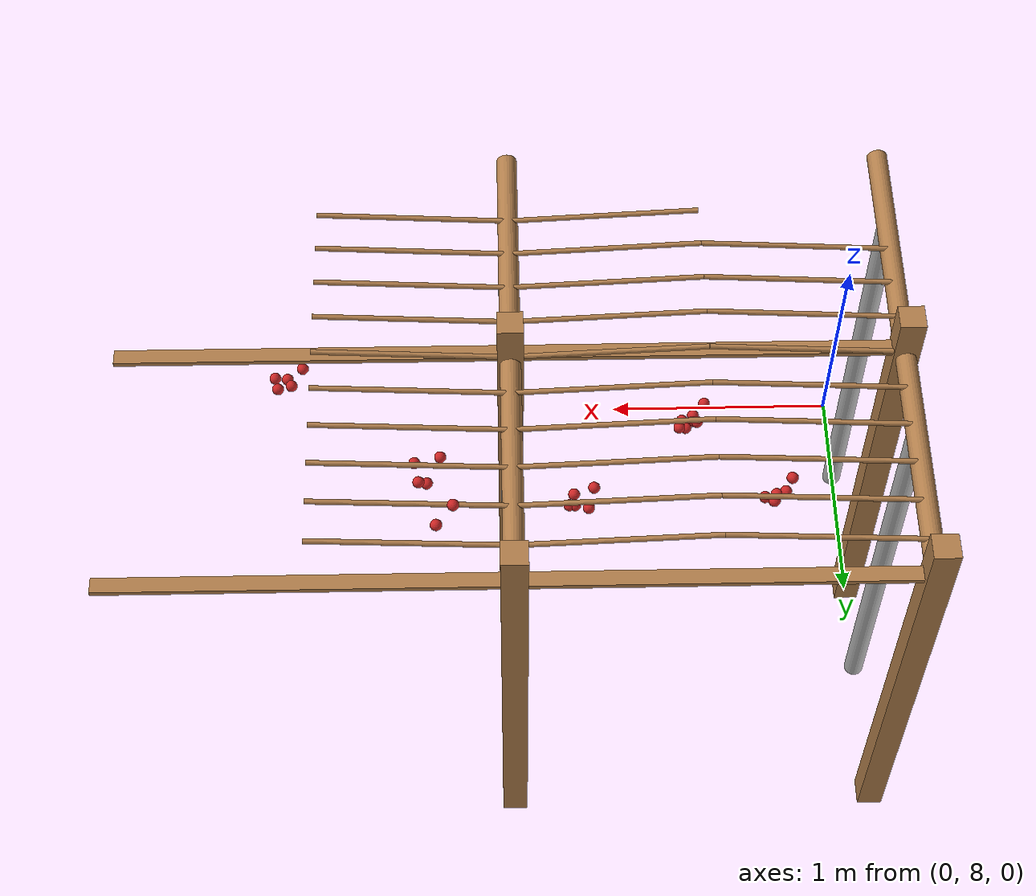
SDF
<sdf version="1.4">
 <model name="pergola">
  <include><name>post_9</name><pose>0.0 9.0 0 0 0 0</pose><uri>model://post</uri></include>
  <include><name>post_10</name><pose>0.0 10.0 0 0 0 0</pose><uri>model://post</uri></include>
  <include><name>post_20</name><pose>1.5 9.0 0 0 0 0</pose><uri>model://post</uri></include>
  <include><name>post_21</name><pose>1.5 10.0 0 0 0 0</pose><uri>model://post</uri></include>
  <link name="beam_9">
   <pose>0.75 9.0 1.81 0 0 0</pose>
   <collision name="collision"><geometry><box><size>1.5 0.06 0.02</size></box></geometry></collision>
   <visual name="visual">
    <geometry><box><size>1.5 0.06 0.02</size></box></geometry>
    <material><script><name>Gazebo/Wood</name></script></material>
   </visual>
   <inertial>
    <mass>5</mass>
    <inertia>
     <ixx>0.0016666666666666668</ixx>
     <ixy>0.0</ixy>
     <ixz>0.0</ixz>
     <iyy>0.9390000000000001</iyy>
     <iyz>0.0</iyz>
     <izz>0.9376666666666665</izz>
    </inertia>
   </inertial>
  </link>
  <link name="beam_10">
   <pose>0.75 10.0 1.81 0 0 0</pose>
   <collision name="collision"><geometry><box><size>1.5 0.06 0.02</size></box></geometry></collision>
   <visual name="visual">
    <geometry><box><size>1.5 0.06 0.02</size></box></geometry>
    <material><script><name>Gazebo/Wood</name></script></material>
   </visual>
   <inertial>
    <mass>5</mass>
    <inertia>
     <ixx>0.0016666666666666668</ixx>
     <ixy>0.0</ixy>
     <ixz>0.0</ixz>
     <iyy>0.9390000000000001</iyy>
     <iyz>0.0</iyz>
     <izz>0.9376666666666665</izz>
    </inertia>
   </inertial>
  </link>
  <link name="beam_20">
   <pose>2.25 9.0 1.81 0 0 0</pose>
   <collision name="collision"><geometry><box><size>1.5 0.06 0.02</size></box></geometry></collision>
   <visual name="visual">
    <geometry><box><size>1.5 0.06 0.02</size></box></geometry>
    <material><script><name>Gazebo/Wood</name></script></material>
   </visual>
   <inertial>
    <mass>5</mass>
    <inertia>
     <ixx>0.0016666666666666668</ixx>
     <ixy>0.0</ixy>
     <ixz>0.0</ixz>
     <iyy>0.9390000000000001</iyy>
     <iyz>0.0</iyz>
     <izz>0.9376666666666665</izz>
    </inertia>
   </inertial>
  </link>
  <link name="beam_21">
   <pose>2.25 10.0 1.81 0 0 0</pose>
   <collision name="collision"><geometry><box><size>1.5 0.06 0.02</size></box></geometry></collision>
   <visual name="visual">
    <geometry><box><size>1.5 0.06 0.02</size></box></geometry>
    <material><script><name>Gazebo/Wood</name></script></material>
   </visual>
   <inertial>
    <mass>5</mass>
    <inertia>
     <ixx>0.0016666666666666668</ixx>
     <ixy>0.0</ixy>
     <ixz>0.0</ixz>
     <iyy>0.9390000000000001</iyy>
     <iyz>0.0</iyz>
     <izz>0.9376666666666665</izz>
    </inertia>
   </inertial>
  </link>
  <include><name>tree_8</name><pose>0.0 8.4 0 0 0 0</pose><uri>model://tree_trunk</uri></include>
  <include><name>tree_9</name><pose>0.0 9.4 0 0 0 0</pose><uri>model://tree_trunk</uri></include>
  <include><name>tree_18</name><pose>1.5 8.4 0 0 0 0</pose><uri>model://tree_trunk</uri></include>
  <include><name>tree_19</name><pose>1.5 9.4 0 0 0 0</pose><uri>model://tree_trunk</uri></include>
  <link name="baseBranch_8">
   <pose>0.0 8.5 1.8 1.5707963267948966 0 0</pose>
   <collision name="collision">
    <geometry><cylinder><radius>0.04</radius><length>0.94</length></cylinder></geometry>
   </collision>
   <visual name="visual">
    <geometry><cylinder><radius>0.04</radius><length>0.94</length></cylinder></geometry>
    <material><script><name>Gazebo/WoodFloor</name></script></material>
   </visual>
   <inertial>
    <mass>10</mass>
    <inertia>
     <ixx>0.7403333333333334</ixx>
     <ixy>0.0</ixy>
     <ixz>0.0</ixz>
     <iyy>0.7403333333333334</iyy>
     <iyz>0.0</iyz>
     <izz>0.008</izz>
    </inertia>
   </inertial>
  </link>
  <link name="baseBranch_9">
   <pose>0.0 9.5 1.8 1.5707963267948966 0 0</pose>
   <collision name="collision">
    <geometry><cylinder><radius>0.04</radius><length>0.94</length></cylinder></geometry>
   </collision>
   <visual name="visual">
    <geometry><cylinder><radius>0.04</radius><length>0.94</length></cylinder></geometry>
    <material><script><name>Gazebo/WoodFloor</name></script></material>
   </visual>
   <inertial>
    <mass>10</mass>
    <inertia>
     <ixx>0.7403333333333334</ixx>
     <ixy>0.0</ixy>
     <ixz>0.0</ixz>
     <iyy>0.7403333333333334</iyy>
     <iyz>0.0</iyz>
     <izz>0.008</izz>
    </inertia>
   </inertial>
  </link>
  <link name="baseBranch_18">
   <pose>1.5 8.5 1.8 1.5707963267948966 0 0</pose>
   <collision name="collision">
    <geometry><cylinder><radius>0.04</radius><length>0.94</length></cylinder></geometry>
   </collision>
   <visual name="visual">
    <geometry><cylinder><radius>0.04</radius><length>0.94</length></cylinder></geometry>
    <material><script><name>Gazebo/WoodFloor</name></script></material>
   </visual>
   <inertial>
    <mass>10</mass>
    <inertia>
     <ixx>0.7403333333333334</ixx>
     <ixy>0.0</ixy>
     <ixz>0.0</ixz>
     <iyy>0.7403333333333334</iyy>
     <iyz>0.0</iyz>
     <izz>0.008</izz>
    </inertia>
   </inertial>
  </link>
  <link name="baseBranch_19">
   <pose>1.5 9.5 1.8 1.5707963267948966 0 0</pose>
   <collision name="collision">
    <geometry><cylinder><radius>0.04</radius><length>0.94</length></cylinder></geometry>
   </collision>
   <visual name="visual">
    <geometry><cylinder><radius>0.04</radius><length>0.94</length></cylinder></geometry>
    <material><script><name>Gazebo/WoodFloor</name></script></material>
   </visual>
   <inertial>
    <mass>10</mass>
    <inertia>
     <ixx>0.7403333333333334</ixx>
     <ixy>0.0</ixy>
     <ixz>0.0</ixz>
     <iyy>0.7403333333333334</iyy>
     <iyz>0.0</iyz>
     <izz>0.008</izz>
    </inertia>
   </inertial>
  </link>
  <link name="vine_101">
   <pose>1.125 8.363333333333332 1.85 0 -1.5042281630190728 0</pose>
   <collision name="collision">
    <geometry><cylinder><radius>0.01</radius><length>0.7516648189186453</length></cylinder></geometry>
   </collision>
   <visual name="visual">
    <geometry><cylinder><radius>0.01</radius><length>0.7516648189186453</length></cylinder></geometry>
    <material><script><name>Gazebo/WoodFloor</name></script></material>
   </visual>
   <inertial>
    <mass>5</mass>
    <inertia>
     <ixx>0.23554166666666657</ixx>
     <ixy>0.0</ixy>
     <ixz>0.0</ixz>
     <iyy>0.23554166666666657</iyy>
     <iyz>0.0</iyz>
     <izz>0.00025</izz>
    </inertia>
   </inertial>
  </link>
  <link name="vine_102">
   <pose>0.375 8.53 1.85 0 1.5042281630190728 0</pose>
   <collision name="collision">
    <geometry><cylinder><radius>0.01</radius><length>0.7516648189186453</length></cylinder></geometry>
   </collision>
   <visual name="visual">
    <geometry><cylinder><radius>0.01</radius><length>0.7516648189186453</length></cylinder></geometry>
    <material><script><name>Gazebo/WoodFloor</name></script></material>
   </visual>
   <inertial>
    <mass>5</mass>
    <inertia>
     <ixx>0.23554166666666657</ixx>
     <ixy>0.0</ixy>
     <ixz>0.0</ixz>
     <iyy>0.23554166666666657</iyy>
     <iyz>0.0</iyz>
     <izz>0.00025</izz>
    </inertia>
   </inertial>
  </link>
  <link name="vine_103">
   <pose>1.125 8.53 1.85 0 -1.5042281630190728 0</pose>
   <collision name="collision">
    <geometry><cylinder><radius>0.01</radius><length>0.7516648189186453</length></cylinder></geometry>
   </collision>
   <visual name="visual">
    <geometry><cylinder><radius>0.01</radius><length>0.7516648189186453</length></cylinder></geometry>
    <material><script><name>Gazebo/WoodFloor</name></script></material>
   </visual>
   <inertial>
    <mass>5</mass>
    <inertia>
     <ixx>0.23554166666666657</ixx>
     <ixy>0.0</ixy>
     <ixz>0.0</ixz>
     <iyy>0.23554166666666657</iyy>
     <iyz>0.0</iyz>
     <izz>0.00025</izz>
    </inertia>
   </inertial>
  </link>
  <link name="vine_104">
   <pose>0.375 8.696666666666665 1.85 0 1.5042281630190728 0</pose>
   <collision name="collision">
    <geometry><cylinder><radius>0.01</radius><length>0.7516648189186453</length></cylinder></geometry>
   </collision>
   <visual name="visual">
    <geometry><cylinder><radius>0.01</radius><length>0.7516648189186453</length></cylinder></geometry>
    <material><script><name>Gazebo/WoodFloor</name></script></material>
   </visual>
   <inertial>
    <mass>5</mass>
    <inertia>
     <ixx>0.23554166666666657</ixx>
     <ixy>0.0</ixy>
     <ixz>0.0</ixz>
     <iyy>0.23554166666666657</iyy>
     <iyz>0.0</iyz>
     <izz>0.00025</izz>
    </inertia>
   </inertial>
  </link>
  <link name="vine_105">
   <pose>1.125 8.696666666666665 1.85 0 -1.5042281630190728 0</pose>
   <collision name="collision">
    <geometry><cylinder><radius>0.01</radius><length>0.7516648189186453</length></cylinder></geometry>
   </collision>
   <visual name="visual">
    <geometry><cylinder><radius>0.01</radius><length>0.7516648189186453</length></cylinder></geometry>
    <material><script><name>Gazebo/WoodFloor</name></script></material>
   </visual>
   <inertial>
    <mass>5</mass>
    <inertia>
     <ixx>0.23554166666666657</ixx>
     <ixy>0.0</ixy>
     <ixz>0.0</ixz>
     <iyy>0.23554166666666657</iyy>
     <iyz>0.0</iyz>
     <izz>0.00025</izz>
    </inertia>
   </inertial>
  </link>
  <link name="vine_106">
   <pose>0.375 8.863333333333332 1.85 0 1.5042281630190728 0</pose>
   <collision name="collision">
    <geometry><cylinder><radius>0.01</radius><length>0.7516648189186453</length></cylinder></geometry>
   </collision>
   <visual name="visual">
    <geometry><cylinder><radius>0.01</radius><length>0.7516648189186453</length></cylinder></geometry>
    <material><script><name>Gazebo/WoodFloor</name></script></material>
   </visual>
   <inertial>
    <mass>5</mass>
    <inertia>
     <ixx>0.23554166666666657</ixx>
     <ixy>0.0</ixy>
     <ixz>0.0</ixz>
     <iyy>0.23554166666666657</iyy>
     <iyz>0.0</iyz>
     <izz>0.00025</izz>
    </inertia>
   </inertial>
  </link>
  <link name="vine_107">
   <pose>1.125 8.863333333333332 1.85 0 -1.5042281630190728 0</pose>
   <collision name="collision">
    <geometry><cylinder><radius>0.01</radius><length>0.7516648189186453</length></cylinder></geometry>
   </collision>
   <visual name="visual">
    <geometry><cylinder><radius>0.01</radius><length>0.7516648189186453</length></cylinder></geometry>
    <material><script><name>Gazebo/WoodFloor</name></script></material>
   </visual>
   <inertial>
    <mass>5</mass>
    <inertia>
     <ixx>0.23554166666666657</ixx>
     <ixy>0.0</ixy>
     <ixz>0.0</ixz>
     <iyy>0.23554166666666657</iyy>
     <iyz>0.0</iyz>
     <izz>0.00025</izz>
    </inertia>
   </inertial>
  </link>
  <link name="vine_108">
   <pose>0.375 9.03 1.85 0 1.5042281630190728 0</pose>
   <collision name="collision">
    <geometry><cylinder><radius>0.01</radius><length>0.7516648189186453</length></cylinder></geometry>
   </collision>
   <visual name="visual">
    <geometry><cylinder><radius>0.01</radius><length>0.7516648189186453</length></cylinder></geometry>
    <material><script><name>Gazebo/WoodFloor</name></script></material>
   </visual>
   <inertial>
    <mass>5</mass>
    <inertia>
     <ixx>0.23554166666666657</ixx>
     <ixy>0.0</ixy>
     <ixz>0.0</ixz>
     <iyy>0.23554166666666657</iyy>
     <iyz>0.0</iyz>
     <izz>0.00025</izz>
    </inertia>
   </inertial>
  </link>
  <link name="vine_109">
   <pose>1.125 9.03 1.85 0 -1.5042281630190728 0</pose>
   <collision name="collision">
    <geometry><cylinder><radius>0.01</radius><length>0.7516648189186453</length></cylinder></geometry>
   </collision>
   <visual name="visual">
    <geometry><cylinder><radius>0.01</radius><length>0.7516648189186453</length></cylinder></geometry>
    <material><script><name>Gazebo/WoodFloor</name></script></material>
   </visual>
   <inertial>
    <mass>5</mass>
    <inertia>
     <ixx>0.23554166666666657</ixx>
     <ixy>0.0</ixy>
     <ixz>0.0</ixz>
     <iyy>0.23554166666666657</iyy>
     <iyz>0.0</iyz>
     <izz>0.00025</izz>
    </inertia>
   </inertial>
  </link>
  <link name="vine_110">
   <pose>0.375 9.196666666666665 1.85 0 1.5042281630190728 0</pose>
   <collision name="collision">
    <geometry><cylinder><radius>0.01</radius><length>0.7516648189186453</length></cylinder></geometry>
   </collision>
   <visual name="visual">
    <geometry><cylinder><radius>0.01</radius><length>0.7516648189186453</length></cylinder></geometry>
    <material><script><name>Gazebo/WoodFloor</name></script></material>
   </visual>
   <inertial>
    <mass>5</mass>
    <inertia>
     <ixx>0.23554166666666657</ixx>
     <ixy>0.0</ixy>
     <ixz>0.0</ixz>
     <iyy>0.23554166666666657</iyy>
     <iyz>0.0</iyz>
     <izz>0.00025</izz>
    </inertia>
   </inertial>
  </link>
  <link name="vine_111">
   <pose>1.125 9.196666666666665 1.85 0 -1.5042281630190728 0</pose>
   <collision name="collision">
    <geometry><cylinder><radius>0.01</radius><length>0.7516648189186453</length></cylinder></geometry>
   </collision>
   <visual name="visual">
    <geometry><cylinder><radius>0.01</radius><length>0.7516648189186453</length></cylinder></geometry>
    <material><script><name>Gazebo/WoodFloor</name></script></material>
   </visual>
   <inertial>
    <mass>5</mass>
    <inertia>
     <ixx>0.23554166666666657</ixx>
     <ixy>0.0</ixy>
     <ixz>0.0</ixz>
     <iyy>0.23554166666666657</iyy>
     <iyz>0.0</iyz>
     <izz>0.00025</izz>
    </inertia>
   </inertial>
  </link>
  <link name="vine_112">
   <pose>0.375 9.363333333333332 1.85 0 1.5042281630190728 0</pose>
   <collision name="collision">
    <geometry><cylinder><radius>0.01</radius><length>0.7516648189186453</length></cylinder></geometry>
   </collision>
   <visual name="visual">
    <geometry><cylinder><radius>0.01</radius><length>0.7516648189186453</length></cylinder></geometry>
    <material><script><name>Gazebo/WoodFloor</name></script></material>
   </visual>
   <inertial>
    <mass>5</mass>
    <inertia>
     <ixx>0.23554166666666657</ixx>
     <ixy>0.0</ixy>
     <ixz>0.0</ixz>
     <iyy>0.23554166666666657</iyy>
     <iyz>0.0</iyz>
     <izz>0.00025</izz>
    </inertia>
   </inertial>
  </link>
  <link name="vine_113">
   <pose>1.125 9.363333333333332 1.85 0 -1.5042281630190728 0</pose>
   <collision name="collision">
    <geometry><cylinder><radius>0.01</radius><length>0.7516648189186453</length></cylinder></geometry>
   </collision>
   <visual name="visual">
    <geometry><cylinder><radius>0.01</radius><length>0.7516648189186453</length></cylinder></geometry>
    <material><script><name>Gazebo/WoodFloor</name></script></material>
   </visual>
   <inertial>
    <mass>5</mass>
    <inertia>
     <ixx>0.23554166666666657</ixx>
     <ixy>0.0</ixy>
     <ixz>0.0</ixz>
     <iyy>0.23554166666666657</iyy>
     <iyz>0.0</iyz>
     <izz>0.00025</izz>
    </inertia>
   </inertial>
  </link>
  <link name="vine_114">
   <pose>0.375 9.53 1.85 0 1.5042281630190728 0</pose>
   <collision name="collision">
    <geometry><cylinder><radius>0.01</radius><length>0.7516648189186453</length></cylinder></geometry>
   </collision>
   <visual name="visual">
    <geometry><cylinder><radius>0.01</radius><length>0.7516648189186453</length></cylinder></geometry>
    <material><script><name>Gazebo/WoodFloor</name></script></material>
   </visual>
   <inertial>
    <mass>5</mass>
    <inertia>
     <ixx>0.23554166666666657</ixx>
     <ixy>0.0</ixy>
     <ixz>0.0</ixz>
     <iyy>0.23554166666666657</iyy>
     <iyz>0.0</iyz>
     <izz>0.00025</izz>
    </inertia>
   </inertial>
  </link>
  <link name="vine_115">
   <pose>1.125 9.53 1.85 0 -1.5042281630190728 0</pose>
   <collision name="collision">
    <geometry><cylinder><radius>0.01</radius><length>0.7516648189186453</length></cylinder></geometry>
   </collision>
   <visual name="visual">
    <geometry><cylinder><radius>0.01</radius><length>0.7516648189186453</length></cylinder></geometry>
    <material><script><name>Gazebo/WoodFloor</name></script></material>
   </visual>
   <inertial>
    <mass>5</mass>
    <inertia>
     <ixx>0.23554166666666657</ixx>
     <ixy>0.0</ixy>
     <ixz>0.0</ixz>
     <iyy>0.23554166666666657</iyy>
     <iyz>0.0</iyz>
     <izz>0.00025</izz>
    </inertia>
   </inertial>
  </link>
  <link name="vine_116">
   <pose>0.375 9.696666666666665 1.85 0 1.5042281630190728 0</pose>
   <collision name="collision">
    <geometry><cylinder><radius>0.01</radius><length>0.7516648189186453</length></cylinder></geometry>
   </collision>
   <visual name="visual">
    <geometry><cylinder><radius>0.01</radius><length>0.7516648189186453</length></cylinder></geometry>
    <material><script><name>Gazebo/WoodFloor</name></script></material>
   </visual>
   <inertial>
    <mass>5</mass>
    <inertia>
     <ixx>0.23554166666666657</ixx>
     <ixy>0.0</ixy>
     <ixz>0.0</ixz>
     <iyy>0.23554166666666657</iyy>
     <iyz>0.0</iyz>
     <izz>0.00025</izz>
    </inertia>
   </inertial>
  </link>
  <link name="vine_117">
   <pose>1.125 9.696666666666665 1.85 0 -1.5042281630190728 0</pose>
   <collision name="collision">
    <geometry><cylinder><radius>0.01</radius><length>0.7516648189186453</length></cylinder></geometry>
   </collision>
   <visual name="visual">
    <geometry><cylinder><radius>0.01</radius><length>0.7516648189186453</length></cylinder></geometry>
    <material><script><name>Gazebo/WoodFloor</name></script></material>
   </visual>
   <inertial>
    <mass>5</mass>
    <inertia>
     <ixx>0.23554166666666657</ixx>
     <ixy>0.0</ixy>
     <ixz>0.0</ixz>
     <iyy>0.23554166666666657</iyy>
     <iyz>0.0</iyz>
     <izz>0.00025</izz>
    </inertia>
   </inertial>
  </link>
  <link name="vine_118">
   <pose>0.375 9.863333333333332 1.85 0 1.5042281630190728 0</pose>
   <collision name="collision">
    <geometry><cylinder><radius>0.01</radius><length>0.7516648189186453</length></cylinder></geometry>
   </collision>
   <visual name="visual">
    <geometry><cylinder><radius>0.01</radius><length>0.7516648189186453</length></cylinder></geometry>
    <material><script><name>Gazebo/WoodFloor</name></script></material>
   </visual>
   <inertial>
    <mass>5</mass>
    <inertia>
     <ixx>0.23554166666666657</ixx>
     <ixy>0.0</ixy>
     <ixz>0.0</ixz>
     <iyy>0.23554166666666657</iyy>
     <iyz>0.0</iyz>
     <izz>0.00025</izz>
    </inertia>
   </inertial>
  </link>
  <link name="vine_119">
   <pose>1.125 9.863333333333332 1.85 0 -1.5042281630190728 0</pose>
   <collision name="collision">
    <geometry><cylinder><radius>0.01</radius><length>0.7516648189186453</length></cylinder></geometry>
   </collision>
   <visual name="visual">
    <geometry><cylinder><radius>0.01</radius><length>0.7516648189186453</length></cylinder></geometry>
    <material><script><name>Gazebo/WoodFloor</name></script></material>
   </visual>
   <inertial>
    <mass>5</mass>
    <inertia>
     <ixx>0.23554166666666657</ixx>
     <ixy>0.0</ixy>
     <ixz>0.0</ixz>
     <iyy>0.23554166666666657</iyy>
     <iyz>0.0</iyz>
     <izz>0.00025</izz>
    </inertia>
   </inertial>
  </link>
  <link name="vine_220">
   <pose>1.875 8.363333333333332 1.85 0 1.5042281630190728 0</pose>
   <collision name="collision">
    <geometry><cylinder><radius>0.01</radius><length>0.7516648189186453</length></cylinder></geometry>
   </collision>
   <visual name="visual">
    <geometry><cylinder><radius>0.01</radius><length>0.7516648189186453</length></cylinder></geometry>
    <material><script><name>Gazebo/WoodFloor</name></script></material>
   </visual>
   <inertial>
    <mass>5</mass>
    <inertia>
     <ixx>0.23554166666666657</ixx>
     <ixy>0.0</ixy>
     <ixz>0.0</ixz>
     <iyy>0.23554166666666657</iyy>
     <iyz>0.0</iyz>
     <izz>0.00025</izz>
    </inertia>
   </inertial>
  </link>
  <link name="vine_222">
   <pose>1.875 8.53 1.85 0 1.5042281630190728 0</pose>
   <collision name="collision">
    <geometry><cylinder><radius>0.01</radius><length>0.7516648189186453</length></cylinder></geometry>
   </collision>
   <visual name="visual">
    <geometry><cylinder><radius>0.01</radius><length>0.7516648189186453</length></cylinder></geometry>
    <material><script><name>Gazebo/WoodFloor</name></script></material>
   </visual>
   <inertial>
    <mass>5</mass>
    <inertia>
     <ixx>0.23554166666666657</ixx>
     <ixy>0.0</ixy>
     <ixz>0.0</ixz>
     <iyy>0.23554166666666657</iyy>
     <iyz>0.0</iyz>
     <izz>0.00025</izz>
    </inertia>
   </inertial>
  </link>
  <link name="vine_224">
   <pose>1.875 8.696666666666665 1.85 0 1.5042281630190728 0</pose>
   <collision name="collision">
    <geometry><cylinder><radius>0.01</radius><length>0.7516648189186453</length></cylinder></geometry>
   </collision>
   <visual name="visual">
    <geometry><cylinder><radius>0.01</radius><length>0.7516648189186453</length></cylinder></geometry>
    <material><script><name>Gazebo/WoodFloor</name></script></material>
   </visual>
   <inertial>
    <mass>5</mass>
    <inertia>
     <ixx>0.23554166666666657</ixx>
     <ixy>0.0</ixy>
     <ixz>0.0</ixz>
     <iyy>0.23554166666666657</iyy>
     <iyz>0.0</iyz>
     <izz>0.00025</izz>
    </inertia>
   </inertial>
  </link>
  <link name="vine_226">
   <pose>1.875 8.863333333333332 1.85 0 1.5042281630190728 0</pose>
   <collision name="collision">
    <geometry><cylinder><radius>0.01</radius><length>0.7516648189186453</length></cylinder></geometry>
   </collision>
   <visual name="visual">
    <geometry><cylinder><radius>0.01</radius><length>0.7516648189186453</length></cylinder></geometry>
    <material><script><name>Gazebo/WoodFloor</name></script></material>
   </visual>
   <inertial>
    <mass>5</mass>
    <inertia>
     <ixx>0.23554166666666657</ixx>
     <ixy>0.0</ixy>
     <ixz>0.0</ixz>
     <iyy>0.23554166666666657</iyy>
     <iyz>0.0</iyz>
     <izz>0.00025</izz>
    </inertia>
   </inertial>
  </link>
  <link name="vine_228">
   <pose>1.875 9.03 1.85 0 1.5042281630190728 0</pose>
   <collision name="collision">
    <geometry><cylinder><radius>0.01</radius><length>0.7516648189186453</length></cylinder></geometry>
   </collision>
   <visual name="visual">
    <geometry><cylinder><radius>0.01</radius><length>0.7516648189186453</length></cylinder></geometry>
    <material><script><name>Gazebo/WoodFloor</name></script></material>
   </visual>
   <inertial>
    <mass>5</mass>
    <inertia>
     <ixx>0.23554166666666657</ixx>
     <ixy>0.0</ixy>
     <ixz>0.0</ixz>
     <iyy>0.23554166666666657</iyy>
     <iyz>0.0</iyz>
     <izz>0.00025</izz>
    </inertia>
   </inertial>
  </link>
  <link name="vine_230">
   <pose>1.875 9.196666666666665 1.85 0 1.5042281630190728 0</pose>
   <collision name="collision">
    <geometry><cylinder><radius>0.01</radius><length>0.7516648189186453</length></cylinder></geometry>
   </collision>
   <visual name="visual">
    <geometry><cylinder><radius>0.01</radius><length>0.7516648189186453</length></cylinder></geometry>
    <material><script><name>Gazebo/WoodFloor</name></script></material>
   </visual>
   <inertial>
    <mass>5</mass>
    <inertia>
     <ixx>0.23554166666666657</ixx>
     <ixy>0.0</ixy>
     <ixz>0.0</ixz>
     <iyy>0.23554166666666657</iyy>
     <iyz>0.0</iyz>
     <izz>0.00025</izz>
    </inertia>
   </inertial>
  </link>
  <link name="vine_232">
   <pose>1.875 9.363333333333332 1.85 0 1.5042281630190728 0</pose>
   <collision name="collision">
    <geometry><cylinder><radius>0.01</radius><length>0.7516648189186453</length></cylinder></geometry>
   </collision>
   <visual name="visual">
    <geometry><cylinder><radius>0.01</radius><length>0.7516648189186453</length></cylinder></geometry>
    <material><script><name>Gazebo/WoodFloor</name></script></material>
   </visual>
   <inertial>
    <mass>5</mass>
    <inertia>
     <ixx>0.23554166666666657</ixx>
     <ixy>0.0</ixy>
     <ixz>0.0</ixz>
     <iyy>0.23554166666666657</iyy>
     <iyz>0.0</iyz>
     <izz>0.00025</izz>
    </inertia>
   </inertial>
  </link>
  <link name="vine_234">
   <pose>1.875 9.53 1.85 0 1.5042281630190728 0</pose>
   <collision name="collision">
    <geometry><cylinder><radius>0.01</radius><length>0.7516648189186453</length></cylinder></geometry>
   </collision>
   <visual name="visual">
    <geometry><cylinder><radius>0.01</radius><length>0.7516648189186453</length></cylinder></geometry>
    <material><script><name>Gazebo/WoodFloor</name></script></material>
   </visual>
   <inertial>
    <mass>5</mass>
    <inertia>
     <ixx>0.23554166666666657</ixx>
     <ixy>0.0</ixy>
     <ixz>0.0</ixz>
     <iyy>0.23554166666666657</iyy>
     <iyz>0.0</iyz>
     <izz>0.00025</izz>
    </inertia>
   </inertial>
  </link>
  <link name="vine_236">
   <pose>1.875 9.696666666666665 1.85 0 1.5042281630190728 0</pose>
   <collision name="collision">
    <geometry><cylinder><radius>0.01</radius><length>0.7516648189186453</length></cylinder></geometry>
   </collision>
   <visual name="visual">
    <geometry><cylinder><radius>0.01</radius><length>0.7516648189186453</length></cylinder></geometry>
    <material><script><name>Gazebo/WoodFloor</name></script></material>
   </visual>
   <inertial>
    <mass>5</mass>
    <inertia>
     <ixx>0.23554166666666657</ixx>
     <ixy>0.0</ixy>
     <ixz>0.0</ixz>
     <iyy>0.23554166666666657</iyy>
     <iyz>0.0</iyz>
     <izz>0.00025</izz>
    </inertia>
   </inertial>
  </link>
  <link name="vine_238">
   <pose>1.875 9.863333333333332 1.85 0 1.5042281630190728 0</pose>
   <collision name="collision">
    <geometry><cylinder><radius>0.01</radius><length>0.7516648189186453</length></cylinder></geometry>
   </collision>
   <visual name="visual">
    <geometry><cylinder><radius>0.01</radius><length>0.7516648189186453</length></cylinder></geometry>
    <material><script><name>Gazebo/WoodFloor</name></script></material>
   </visual>
   <inertial>
    <mass>5</mass>
    <inertia>
     <ixx>0.23554166666666657</ixx>
     <ixy>0.0</ixy>
     <ixz>0.0</ixz>
     <iyy>0.23554166666666657</iyy>
     <iyz>0.0</iyz>
     <izz>0.00025</izz>
    </inertia>
   </inertial>
  </link>
  <link name="fruit_30">
   <pose>0.755792844194699 9.103450807325663 1.6052357998319977 0 0 0</pose>
   <collision name="fruit_collision_30"><geometry><sphere><radius>0.022</radius></sphere></geometry></collision>
   <visual name="visual">
    <geometry><sphere><radius>0.022</radius></sphere></geometry>
    <material><script><name>Gazebo/Red</name></script></material>
   </visual>
   <inertial>
    <mass>0.05</mass>
    <inertia>
     <ixx>9.679999999999999e-06</ixx>
     <ixy>0.0</ixy>
     <ixz>0.0</ixz>
     <iyy>9.679999999999999e-06</iyy>
     <iyz>0.0</iyz>
     <izz>9.679999999999999e-06</izz>
    </inertia>
   </inertial>
   <sensor name="fruit_contact_30" type="contact">
    <contact><collision>fruit_collision_30</collision></contact>
   </sensor>
  </link>
  <link name="fruit_67">
   <pose>1.7673895222020446 9.404518107727268 1.7100876398979161 0 0 0</pose>
   <collision name="fruit_collision_67"><geometry><sphere><radius>0.022</radius></sphere></geometry></collision>
   <visual name="visual">
    <geometry><sphere><radius>0.022</radius></sphere></geometry>
    <material><script><name>Gazebo/Red</name></script></material>
   </visual>
   <inertial>
    <mass>0.05</mass>
    <inertia>
     <ixx>9.679999999999999e-06</ixx>
     <ixy>0.0</ixy>
     <ixz>0.0</ixz>
     <iyy>9.679999999999999e-06</iyy>
     <iyz>0.0</iyz>
     <izz>9.679999999999999e-06</izz>
    </inertia>
   </inertial>
   <sensor name="fruit_contact_67" type="contact">
    <contact><collision>fruit_collision_67</collision></contact>
   </sensor>
  </link>
  <link name="fruit_68">
   <pose>0.46208725345724905 9.52044053483191 1.7125968568966448 0 0 0</pose>
   <collision name="fruit_collision_68"><geometry><sphere><radius>0.022</radius></sphere></geometry></collision>
   <visual name="visual">
    <geometry><sphere><radius>0.022</radius></sphere></geometry>
    <material><script><name>Gazebo/Red</name></script></material>
   </visual>
   <inertial>
    <mass>0.05</mass>
    <inertia>
     <ixx>9.679999999999999e-06</ixx>
     <ixy>0.0</ixy>
     <ixz>0.0</ixz>
     <iyy>9.679999999999999e-06</iyy>
     <iyz>0.0</iyz>
     <izz>9.679999999999999e-06</izz>
    </inertia>
   </inertial>
   <sensor name="fruit_contact_68" type="contact">
    <contact><collision>fruit_collision_68</collision></contact>
   </sensor>
  </link>
  <link name="fruit_82">
   <pose>2.2939515389181184 8.99138709063981 1.7146847765496893 0 0 0</pose>
   <collision name="fruit_collision_82"><geometry><sphere><radius>0.022</radius></sphere></geometry></collision>
   <visual name="visual">
    <geometry><sphere><radius>0.022</radius></sphere></geometry>
    <material><script><name>Gazebo/Red</name></script></material>
   </visual>
   <inertial>
    <mass>0.05</mass>
    <inertia>
     <ixx>9.679999999999999e-06</ixx>
     <ixy>0.0</ixy>
     <ixz>0.0</ixz>
     <iyy>9.679999999999999e-06</iyy>
     <iyz>0.0</iyz>
     <izz>9.679999999999999e-06</izz>
    </inertia>
   </inertial>
   <sensor name="fruit_contact_82" type="contact">
    <contact><collision>fruit_collision_82</collision></contact>
   </sensor>
  </link>
  <link name="fruit_101">
   <pose>1.7160704738596013 9.706945979006743 1.852573262974747 0 0 0</pose>
   <collision name="fruit_collision_101"><geometry><sphere><radius>0.022</radius></sphere></geometry></collision>
   <visual name="visual">
    <geometry><sphere><radius>0.022</radius></sphere></geometry>
    <material><script><name>Gazebo/Red</name></script></material>
   </visual>
   <inertial>
    <mass>0.05</mass>
    <inertia>
     <ixx>9.679999999999999e-06</ixx>
     <ixy>0.0</ixy>
     <ixz>0.0</ixz>
     <iyy>9.679999999999999e-06</iyy>
     <iyz>0.0</iyz>
     <izz>9.679999999999999e-06</izz>
    </inertia>
   </inertial>
   <sensor name="fruit_contact_101" type="contact">
    <contact><collision>fruit_collision_101</collision></contact>
   </sensor>
  </link>
  <link name="fruit_109">
   <pose>1.193306153062151 9.487244435356917 1.6144778282475178 0 0 0</pose>
   <collision name="fruit_collision_109"><geometry><sphere><radius>0.022</radius></sphere></geometry></collision>
   <visual name="visual">
    <geometry><sphere><radius>0.022</radius></sphere></geometry>
    <material><script><name>Gazebo/Red</name></script></material>
   </visual>
   <inertial>
    <mass>0.05</mass>
    <inertia>
     <ixx>9.679999999999999e-06</ixx>
     <ixy>0.0</ixy>
     <ixz>0.0</ixz>
     <iyy>9.679999999999999e-06</iyy>
     <iyz>0.0</iyz>
     <izz>9.679999999999999e-06</izz>
    </inertia>
   </inertial>
   <sensor name="fruit_contact_109" type="contact">
    <contact><collision>fruit_collision_109</collision></contact>
   </sensor>
  </link>
  <link name="fruit_139">
   <pose>2.335189258603022 9.06412139900345 1.7045835281592354 0 0 0</pose>
   <collision name="fruit_collision_139"><geometry><sphere><radius>0.022</radius></sphere></geometry></collision>
   <visual name="visual">
    <geometry><sphere><radius>0.022</radius></sphere></geometry>
    <material><script><name>Gazebo/Red</name></script></material>
   </visual>
   <inertial>
    <mass>0.05</mass>
    <inertia>
     <ixx>9.679999999999999e-06</ixx>
     <ixy>0.0</ixy>
     <ixz>0.0</ixz>
     <iyy>9.679999999999999e-06</iyy>
     <iyz>0.0</iyz>
     <izz>9.679999999999999e-06</izz>
    </inertia>
   </inertial>
   <sensor name="fruit_contact_139" type="contact">
    <contact><collision>fruit_collision_139</collision></contact>
   </sensor>
  </link>
  <link name="fruit_141">
   <pose>1.7777025805166318 9.77681436903368 1.8308529963634648 0 0 0</pose>
   <collision name="fruit_collision_141"><geometry><sphere><radius>0.022</radius></sphere></geometry></collision>
   <visual name="visual">
    <geometry><sphere><radius>0.022</radius></sphere></geometry>
    <material><script><name>Gazebo/Red</name></script></material>
   </visual>
   <inertial>
    <mass>0.05</mass>
    <inertia>
     <ixx>9.679999999999999e-06</ixx>
     <ixy>0.0</ixy>
     <ixz>0.0</ixz>
     <iyy>9.679999999999999e-06</iyy>
     <iyz>0.0</iyz>
     <izz>9.679999999999999e-06</izz>
    </inertia>
   </inertial>
   <sensor name="fruit_contact_141" type="contact">
    <contact><collision>fruit_collision_141</collision></contact>
   </sensor>
  </link>
  <link name="fruit_150">
   <pose>2.3504501101103683 9.032926989591488 1.7031079241352316 0 0 0</pose>
   <collision name="fruit_collision_150"><geometry><sphere><radius>0.022</radius></sphere></geometry></collision>
   <visual name="visual">
    <geometry><sphere><radius>0.022</radius></sphere></geometry>
    <material><script><name>Gazebo/Red</name></script></material>
   </visual>
   <inertial>
    <mass>0.05</mass>
    <inertia>
     <ixx>9.679999999999999e-06</ixx>
     <ixy>0.0</ixy>
     <ixz>0.0</ixz>
     <iyy>9.679999999999999e-06</iyy>
     <iyz>0.0</iyz>
     <izz>9.679999999999999e-06</izz>
    </inertia>
   </inertial>
   <sensor name="fruit_contact_150" type="contact">
    <contact><collision>fruit_collision_150</collision></contact>
   </sensor>
  </link>
  <link name="fruit_154">
   <pose>1.2659175012117307 9.556183520186158 1.6022126823529068 0 0 0</pose>
   <collision name="fruit_collision_154"><geometry><sphere><radius>0.022</radius></sphere></geometry></collision>
   <visual name="visual">
    <geometry><sphere><radius>0.022</radius></sphere></geometry>
    <material><script><name>Gazebo/Red</name></script></material>
   </visual>
   <inertial>
    <mass>0.05</mass>
    <inertia>
     <ixx>9.679999999999999e-06</ixx>
     <ixy>0.0</ixy>
     <ixz>0.0</ixz>
     <iyy>9.679999999999999e-06</iyy>
     <iyz>0.0</iyz>
     <izz>9.679999999999999e-06</izz>
    </inertia>
   </inertial>
   <sensor name="fruit_contact_154" type="contact">
    <contact><collision>fruit_collision_154</collision></contact>
   </sensor>
  </link>
  <link name="fruit_195">
   <pose>2.3863427577513225 9.075729509521485 1.7012140809959444 0 0 0</pose>
   <collision name="fruit_collision_195"><geometry><sphere><radius>0.022</radius></sphere></geometry></collision>
   <visual name="visual">
    <geometry><sphere><radius>0.022</radius></sphere></geometry>
    <material><script><name>Gazebo/Red</name></script></material>
   </visual>
   <inertial>
    <mass>0.05</mass>
    <inertia>
     <ixx>9.679999999999999e-06</ixx>
     <ixy>0.0</ixy>
     <ixz>0.0</ixz>
     <iyy>9.679999999999999e-06</iyy>
     <iyz>0.0</iyz>
     <izz>9.679999999999999e-06</izz>
    </inertia>
   </inertial>
   <sensor name="fruit_contact_195" type="contact">
    <contact><collision>fruit_collision_195</collision></contact>
   </sensor>
  </link>
  <link name="fruit_201">
   <pose>1.8478966769757532 9.513780347752503 1.710011340169421 0 0 0</pose>
   <collision name="fruit_collision_201"><geometry><sphere><radius>0.022</radius></sphere></geometry></collision>
   <visual name="visual">
    <geometry><sphere><radius>0.022</radius></sphere></geometry>
    <material><script><name>Gazebo/Red</name></script></material>
   </visual>
   <inertial>
    <mass>0.05</mass>
    <inertia>
     <ixx>9.679999999999999e-06</ixx>
     <ixy>0.0</ixy>
     <ixz>0.0</ixz>
     <iyy>9.679999999999999e-06</iyy>
     <iyz>0.0</iyz>
     <izz>9.679999999999999e-06</izz>
    </inertia>
   </inertial>
   <sensor name="fruit_contact_201" type="contact">
    <contact><collision>fruit_collision_201</collision></contact>
   </sensor>
  </link>
  <link name="fruit_204">
   <pose>0.5255080137021738 9.583880482729924 1.7009906424272478 0 0 0</pose>
   <collision name="fruit_collision_204"><geometry><sphere><radius>0.022</radius></sphere></geometry></collision>
   <visual name="visual">
    <geometry><sphere><radius>0.022</radius></sphere></geometry>
    <material><script><name>Gazebo/Red</name></script></material>
   </visual>
   <inertial>
    <mass>0.05</mass>
    <inertia>
     <ixx>9.679999999999999e-06</ixx>
     <ixy>0.0</ixy>
     <ixz>0.0</ixz>
     <iyy>9.679999999999999e-06</iyy>
     <iyz>0.0</iyz>
     <izz>9.679999999999999e-06</izz>
    </inertia>
   </inertial>
   <sensor name="fruit_contact_204" type="contact">
    <contact><collision>fruit_collision_204</collision></contact>
   </sensor>
  </link>
  <link name="fruit_225">
   <pose>0.5359522510437907 9.616163372928478 1.7056204122228524 0 0 0</pose>
   <collision name="fruit_collision_225"><geometry><sphere><radius>0.022</radius></sphere></geometry></collision>
   <visual name="visual">
    <geometry><sphere><radius>0.022</radius></sphere></geometry>
    <material><script><name>Gazebo/Red</name></script></material>
   </visual>
   <inertial>
    <mass>0.05</mass>
    <inertia>
     <ixx>9.679999999999999e-06</ixx>
     <ixy>0.0</ixy>
     <ixz>0.0</ixz>
     <iyy>9.679999999999999e-06</iyy>
     <iyz>0.0</iyz>
     <izz>9.679999999999999e-06</izz>
    </inertia>
   </inertial>
   <sensor name="fruit_contact_225" type="contact">
    <contact><collision>fruit_collision_225</collision></contact>
   </sensor>
  </link>
  <link name="fruit_289">
   <pose>1.2689311902803708 9.512024348920738 1.6091313946645698 0 0 0</pose>
   <collision name="fruit_collision_289"><geometry><sphere><radius>0.022</radius></sphere></geometry></collision>
   <visual name="visual">
    <geometry><sphere><radius>0.022</radius></sphere></geometry>
    <material><script><name>Gazebo/Red</name></script></material>
   </visual>
   <inertial>
    <mass>0.05</mass>
    <inertia>
     <ixx>9.679999999999999e-06</ixx>
     <ixy>0.0</ixy>
     <ixz>0.0</ixz>
     <iyy>9.679999999999999e-06</iyy>
     <iyz>0.0</iyz>
     <izz>9.679999999999999e-06</izz>
    </inertia>
   </inertial>
   <sensor name="fruit_contact_289" type="contact">
    <contact><collision>fruit_collision_289</collision></contact>
   </sensor>
  </link>
  <link name="fruit_295">
   <pose>0.8001592547836971 9.145696433729341 1.5867757397555278 0 0 0</pose>
   <collision name="fruit_collision_295"><geometry><sphere><radius>0.022</radius></sphere></geometry></collision>
   <visual name="visual">
    <geometry><sphere><radius>0.022</radius></sphere></geometry>
    <material><script><name>Gazebo/Red</name></script></material>
   </visual>
   <inertial>
    <mass>0.05</mass>
    <inertia>
     <ixx>9.679999999999999e-06</ixx>
     <ixy>0.0</ixy>
     <ixz>0.0</ixz>
     <iyy>9.679999999999999e-06</iyy>
     <iyz>0.0</iyz>
     <izz>9.679999999999999e-06</izz>
    </inertia>
   </inertial>
   <sensor name="fruit_contact_295" type="contact">
    <contact><collision>fruit_collision_295</collision></contact>
   </sensor>
  </link>
  <link name="fruit_304">
   <pose>0.4904722513182478 9.574527356383818 1.705845980402625 0 0 0</pose>
   <collision name="fruit_collision_304"><geometry><sphere><radius>0.022</radius></sphere></geometry></collision>
   <visual name="visual">
    <geometry><sphere><radius>0.022</radius></sphere></geometry>
    <material><script><name>Gazebo/Red</name></script></material>
   </visual>
   <inertial>
    <mass>0.05</mass>
    <inertia>
     <ixx>9.679999999999999e-06</ixx>
     <ixy>0.0</ixy>
     <ixz>0.0</ixz>
     <iyy>9.679999999999999e-06</iyy>
     <iyz>0.0</iyz>
     <izz>9.679999999999999e-06</izz>
    </inertia>
   </inertial>
   <sensor name="fruit_contact_304" type="contact">
    <contact><collision>fruit_collision_304</collision></contact>
   </sensor>
  </link>
  <link name="fruit_322">
   <pose>0.8432375306973765 9.167330236274255 1.5853986436001626 0 0 0</pose>
   <collision name="fruit_collision_322"><geometry><sphere><radius>0.022</radius></sphere></geometry></collision>
   <visual name="visual">
    <geometry><sphere><radius>0.022</radius></sphere></geometry>
    <material><script><name>Gazebo/Red</name></script></material>
   </visual>
   <inertial>
    <mass>0.05</mass>
    <inertia>
     <ixx>9.679999999999999e-06</ixx>
     <ixy>0.0</ixy>
     <ixz>0.0</ixz>
     <iyy>9.679999999999999e-06</iyy>
     <iyz>0.0</iyz>
     <izz>9.679999999999999e-06</izz>
    </inertia>
   </inertial>
   <sensor name="fruit_contact_322" type="contact">
    <contact><collision>fruit_collision_322</collision></contact>
   </sensor>
  </link>
  <link name="fruit_331">
   <pose>2.398479577302727 9.024744399328554 1.7000044024315146 0 0 0</pose>
   <collision name="fruit_collision_331"><geometry><sphere><radius>0.022</radius></sphere></geometry></collision>
   <visual name="visual">
    <geometry><sphere><radius>0.022</radius></sphere></geometry>
    <material><script><name>Gazebo/Red</name></script></material>
   </visual>
   <inertial>
    <mass>0.05</mass>
    <inertia>
     <ixx>9.679999999999999e-06</ixx>
     <ixy>0.0</ixy>
     <ixz>0.0</ixz>
     <iyy>9.679999999999999e-06</iyy>
     <iyz>0.0</iyz>
     <izz>9.679999999999999e-06</izz>
    </inertia>
   </inertial>
   <sensor name="fruit_contact_331" type="contact">
    <contact><collision>fruit_collision_331</collision></contact>
   </sensor>
  </link>
  <link name="fruit_342">
   <pose>1.8635228562730093 9.428763175902413 1.7098684627939 0 0 0</pose>
   <collision name="fruit_collision_342"><geometry><sphere><radius>0.022</radius></sphere></geometry></collision>
   <visual name="visual">
    <geometry><sphere><radius>0.022</radius></sphere></geometry>
    <material><script><name>Gazebo/Red</name></script></material>
   </visual>
   <inertial>
    <mass>0.05</mass>
    <inertia>
     <ixx>9.679999999999999e-06</ixx>
     <ixy>0.0</ixy>
     <ixz>0.0</ixz>
     <iyy>9.679999999999999e-06</iyy>
     <iyz>0.0</iyz>
     <izz>9.679999999999999e-06</izz>
    </inertia>
   </inertial>
   <sensor name="fruit_contact_342" type="contact">
    <contact><collision>fruit_collision_342</collision></contact>
   </sensor>
  </link>
  <link name="fruit_357">
   <pose>1.8168651428747133 9.510111025389559 1.6949528587288343 0 0 0</pose>
   <collision name="fruit_collision_357"><geometry><sphere><radius>0.022</radius></sphere></geometry></collision>
   <visual name="visual">
    <geometry><sphere><radius>0.022</radius></sphere></geometry>
    <material><script><name>Gazebo/Red</name></script></material>
   </visual>
   <inertial>
    <mass>0.05</mass>
    <inertia>
     <ixx>9.679999999999999e-06</ixx>
     <ixy>0.0</ixy>
     <ixz>0.0</ixz>
     <iyy>9.679999999999999e-06</iyy>
     <iyz>0.0</iyz>
     <izz>9.679999999999999e-06</izz>
    </inertia>
   </inertial>
   <sensor name="fruit_contact_357" type="contact">
    <contact><collision>fruit_collision_357</collision></contact>
   </sensor>
  </link>
  <link name="fruit_382">
   <pose>0.567317178710673 9.58940946920974 1.6908717728081208 0 0 0</pose>
   <collision name="fruit_collision_382"><geometry><sphere><radius>0.022</radius></sphere></geometry></collision>
   <visual name="visual">
    <geometry><sphere><radius>0.022</radius></sphere></geometry>
    <material><script><name>Gazebo/Red</name></script></material>
   </visual>
   <inertial>
    <mass>0.05</mass>
    <inertia>
     <ixx>9.679999999999999e-06</ixx>
     <ixy>0.0</ixy>
     <ixz>0.0</ixz>
     <iyy>9.679999999999999e-06</iyy>
     <iyz>0.0</iyz>
     <izz>9.679999999999999e-06</izz>
    </inertia>
   </inertial>
   <sensor name="fruit_contact_382" type="contact">
    <contact><collision>fruit_collision_382</collision></contact>
   </sensor>
  </link>
  <link name="fruit_396">
   <pose>0.8568882726006521 9.211091793248464 1.601117099730475 0 0 0</pose>
   <collision name="fruit_collision_396"><geometry><sphere><radius>0.022</radius></sphere></geometry></collision>
   <visual name="visual">
    <geometry><sphere><radius>0.022</radius></sphere></geometry>
    <material><script><name>Gazebo/Red</name></script></material>
   </visual>
   <inertial>
    <mass>0.05</mass>
    <inertia>
     <ixx>9.679999999999999e-06</ixx>
     <ixy>0.0</ixy>
     <ixz>0.0</ixz>
     <iyy>9.679999999999999e-06</iyy>
     <iyz>0.0</iyz>
     <izz>9.679999999999999e-06</izz>
    </inertia>
   </inertial>
   <sensor name="fruit_contact_396" type="contact">
    <contact><collision>fruit_collision_396</collision></contact>
   </sensor>
  </link>
  <link name="fruit_441">
   <pose>1.2881446317477354 9.555059284723729 1.6010770422319955 0 0 0</pose>
   <collision name="fruit_collision_441"><geometry><sphere><radius>0.022</radius></sphere></geometry></collision>
   <visual name="visual">
    <geometry><sphere><radius>0.022</radius></sphere></geometry>
    <material><script><name>Gazebo/Red</name></script></material>
   </visual>
   <inertial>
    <mass>0.05</mass>
    <inertia>
     <ixx>9.679999999999999e-06</ixx>
     <ixy>0.0</ixy>
     <ixz>0.0</ixz>
     <iyy>9.679999999999999e-06</iyy>
     <iyz>0.0</iyz>
     <izz>9.679999999999999e-06</izz>
    </inertia>
   </inertial>
   <sensor name="fruit_contact_441" type="contact">
    <contact><collision>fruit_collision_441</collision></contact>
   </sensor>
  </link>
  <link name="fruit_455">
   <pose>0.8018615746548438 9.171544770192305 1.5840308162957648 0 0 0</pose>
   <collision name="fruit_collision_455"><geometry><sphere><radius>0.022</radius></sphere></geometry></collision>
   <visual name="visual">
    <geometry><sphere><radius>0.022</radius></sphere></geometry>
    <material><script><name>Gazebo/Red</name></script></material>
   </visual>
   <inertial>
    <mass>0.05</mass>
    <inertia>
     <ixx>9.679999999999999e-06</ixx>
     <ixy>0.0</ixy>
     <ixz>0.0</ixz>
     <iyy>9.679999999999999e-06</iyy>
     <iyz>0.0</iyz>
     <izz>9.679999999999999e-06</izz>
    </inertia>
   </inertial>
   <sensor name="fruit_contact_455" type="contact">
    <contact><collision>fruit_collision_455</collision></contact>
   </sensor>
  </link>
  <link name="fruit_472">
   <pose>0.7871966723003684 9.183088492701884 1.5968653230057923 0 0 0</pose>
   <collision name="fruit_collision_472"><geometry><sphere><radius>0.022</radius></sphere></geometry></collision>
   <visual name="visual">
    <geometry><sphere><radius>0.022</radius></sphere></geometry>
    <material><script><name>Gazebo/Red</name></script></material>
   </visual>
   <inertial>
    <mass>0.05</mass>
    <inertia>
     <ixx>9.679999999999999e-06</ixx>
     <ixy>0.0</ixy>
     <ixz>0.0</ixz>
     <iyy>9.679999999999999e-06</iyy>
     <iyz>0.0</iyz>
     <izz>9.679999999999999e-06</izz>
    </inertia>
   </inertial>
   <sensor name="fruit_contact_472" type="contact">
    <contact><collision>fruit_collision_472</collision></contact>
   </sensor>
  </link>
  <link name="fruit_485">
   <pose>1.2157157595381496 9.572062724565187 1.6071154355130564 0 0 0</pose>
   <collision name="fruit_collision_485"><geometry><sphere><radius>0.022</radius></sphere></geometry></collision>
   <visual name="visual">
    <geometry><sphere><radius>0.022</radius></sphere></geometry>
    <material><script><name>Gazebo/Red</name></script></material>
   </visual>
   <inertial>
    <mass>0.05</mass>
    <inertia>
     <ixx>9.679999999999999e-06</ixx>
     <ixy>0.0</ixy>
     <ixz>0.0</ixz>
     <iyy>9.679999999999999e-06</iyy>
     <iyz>0.0</iyz>
     <izz>9.679999999999999e-06</izz>
    </inertia>
   </inertial>
   <sensor name="fruit_contact_485" type="contact">
    <contact><collision>fruit_collision_485</collision></contact>
   </sensor>
  </link>
  <link name="fruit_495">
   <pose>0.8315304705288304 9.204861469111657 1.5885068051504851 0 0 0</pose>
   <collision name="fruit_collision_495"><geometry><sphere><radius>0.022</radius></sphere></geometry></collision>
   <visual name="visual">
    <geometry><sphere><radius>0.022</radius></sphere></geometry>
    <material><script><name>Gazebo/Red</name></script></material>
   </visual>
   <inertial>
    <mass>0.05</mass>
    <inertia>
     <ixx>9.679999999999999e-06</ixx>
     <ixy>0.0</ixy>
     <ixz>0.0</ixz>
     <iyy>9.679999999999999e-06</iyy>
     <iyz>0.0</iyz>
     <izz>9.679999999999999e-06</izz>
    </inertia>
   </inertial>
   <sensor name="fruit_contact_495" type="contact">
    <contact><collision>fruit_collision_495</collision></contact>
   </sensor>
  </link>
 </model>
</sdf>
